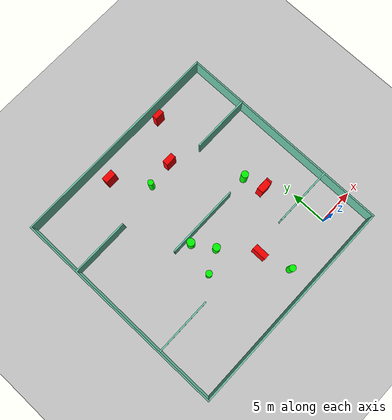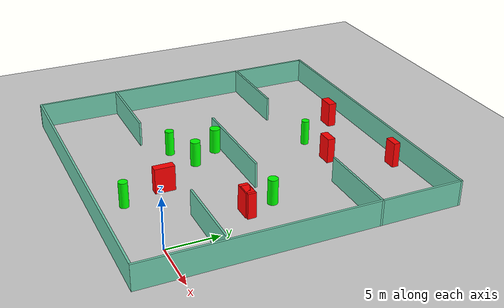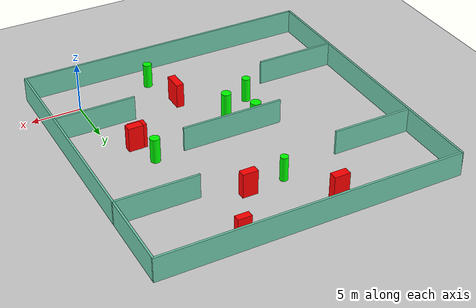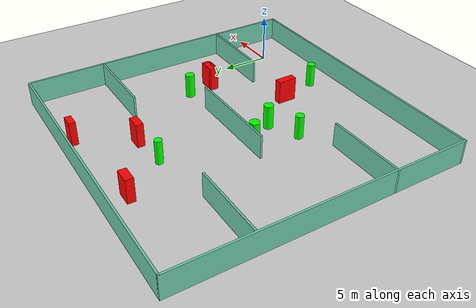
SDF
<sdf version="1.7">
 <world name="default">
  <light name="sun" type="directional">
   <pose>0 0 10 0 -0 0</pose>
   <diffuse>0.8 0.8 0.8 1</diffuse>
   <specular>0.2 0.2 0.2 1</specular>
   <attenuation>
    <range>1000</range>
    <constant>0.9</constant>
    <linear>0.01</linear>
    <quadratic>0.001</quadratic>
   </attenuation>
   <direction>-0.5 0.1 -0.9</direction>
   <spot><inner_angle>0</inner_angle><outer_angle>0</outer_angle><falloff>0</falloff></spot>
  </light>
  <model name="ground_plane">
   <static>1</static>
   <link name="link">
    <collision name="collision">
     <geometry><plane><normal>0 0 1</normal><size>100 100</size></plane></geometry>
     <surface>
      <contact><collide_bitmask>65535</collide_bitmask></contact>
      <friction><ode><mu>100</mu><mu2>50</mu2></ode></friction>
     </surface>
    </collision>
    <visual name="visual">
     <cast_shadows>0</cast_shadows>
     <geometry><plane><normal>0 0 1</normal><size>100 100</size></plane></geometry>
     <material>
      <script><uri>file://media/materials/scripts/gazebo.material</uri><name>Gazebo/Grey</name></script>
     </material>
    </visual>
   </link>
  </model>
  <gravity>0 0 -9.8</gravity>
  <magnetic_field>6e-06 2.3e-05 -4.2e-05</magnetic_field>
  <atmosphere type="adiabatic"/>
  <physics type="ode">
   <max_step_size>0.001</max_step_size>
   <real_time_factor>1</real_time_factor>
   <real_time_update_rate>1000</real_time_update_rate>
  </physics>
  <scene><ambient>0.4 0.4 0.4 1</ambient><background>0.7 0.7 0.7 1</background><shadows>1</shadows></scene>
  <spherical_coordinates>
   <surface_model>EARTH_WGS84</surface_model>
   <latitude_deg>0</latitude_deg>
   <longitude_deg>0</longitude_deg>
   <elevation>0</elevation>
   <heading_deg>0</heading_deg>
  </spherical_coordinates>
  <model name="my_base_walls">
   <link name="Wall_10">
    <collision name="Wall_10_Collision">
     <geometry><box><size>8.2 0.2 2.5</size></box></geometry>
     <pose>0 0 1.25 0 -0 0</pose>
    </collision>
    <visual name="Wall_10_Visual">
     <pose>0 0 1.25 0 -0 0</pose>
     <geometry><box><size>8.2 0.2 2.5</size></box></geometry>
     <material>
      <script><uri>file://media/materials/scripts/gazebo.material</uri><name>Gazebo/Grey</name></script>
      <ambient>0.435294 0.796078 0.67451 1</ambient>
     </material>
     <meta><layer>0</layer></meta>
    </visual>
    <pose>-11 -7 0 0 -0 0</pose>
   </link>
   <link name="Wall_12">
    <collision name="Wall_12_Collision">
     <geometry><box><size>8.2 0.2 2.5</size></box></geometry>
     <pose>0 0 1.25 0 -0 0</pose>
    </collision>
    <visual name="Wall_12_Visual">
     <pose>0 0 1.25 0 -0 0</pose>
     <geometry><box><size>8.2 0.2 2.5</size></box></geometry>
     <material>
      <script><uri>file://media/materials/scripts/gazebo.material</uri><name>Gazebo/Grey</name></script>
      <ambient>0.435294 0.796078 0.67451 1</ambient>
     </material>
     <meta><layer>0</layer></meta>
    </visual>
    <pose>-11 7 0 0 -0 0</pose>
   </link>
   <link name="Wall_14">
    <collision name="Wall_14_Collision">
     <geometry><box><size>8.2 0.2 2.5</size></box></geometry>
     <pose>0 0 1.25 0 -0 0</pose>
    </collision>
    <visual name="Wall_14_Visual">
     <pose>0 0 1.25 0 -0 0</pose>
     <geometry><box><size>8.2 0.2 2.5</size></box></geometry>
     <material>
      <script><uri>file://media/materials/scripts/gazebo.material</uri><name>Gazebo/Grey</name></script>
      <ambient>0.435294 0.796078 0.67451 1</ambient>
     </material>
     <meta><layer>0</layer></meta>
    </visual>
    <pose>11 7 0 0 -0 3.14159</pose>
   </link>
   <link name="Wall_16">
    <collision name="Wall_16_Collision">
     <geometry><box><size>10.2 0.2 2.5</size></box></geometry>
     <pose>0 0 1.25 0 -0 0</pose>
    </collision>
    <visual name="Wall_16_Visual">
     <pose>0 0 1.25 0 -0 0</pose>
     <geometry><box><size>10.2 0.2 2.5</size></box></geometry>
     <material>
      <script><uri>file://media/materials/scripts/gazebo.material</uri><name>Gazebo/Grey</name></script>
      <ambient>0.435294 0.796078 0.67451 1</ambient>
     </material>
     <meta><layer>0</layer></meta>
    </visual>
    <pose>0 0 0 0 -0 3.14159</pose>
   </link>
   <link name="Wall_2">
    <collision name="Wall_2_Collision">
     <geometry><box><size>30.2 0.2 2.5</size></box></geometry>
     <pose>0 0 1.25 0 -0 0</pose>
    </collision>
    <visual name="Wall_2_Visual">
     <pose>0 0 1.25 0 -0 0</pose>
     <geometry><box><size>30.2 0.2 2.5</size></box></geometry>
     <material>
      <script><uri>file://media/materials/scripts/gazebo.material</uri><name>Gazebo/Grey</name></script>
      <ambient>0.435294 0.796078 0.67451 1</ambient>
     </material>
     <meta><layer>0</layer></meta>
    </visual>
    <pose>0 -15 0 0 -0 3.14159</pose>
   </link>
   <link name="Wall_3">
    <collision name="Wall_3_Collision">
     <geometry><box><size>30.2 0.2 2.5</size></box></geometry>
     <pose>0 0 1.25 0 -0 0</pose>
    </collision>
    <visual name="Wall_3_Visual">
     <pose>0 0 1.25 0 -0 0</pose>
     <geometry><box><size>30.2 0.2 2.5</size></box></geometry>
     <material>
      <script><uri>file://media/materials/scripts/gazebo.material</uri><name>Gazebo/Grey</name></script>
      <ambient>0.435294 0.796078 0.67451 1</ambient>
     </material>
     <meta><layer>0</layer></meta>
    </visual>
    <pose>-15 0 0 0 -0 1.5708</pose>
   </link>
   <link name="Wall_4">
    <collision name="Wall_4_Collision">
     <geometry><box><size>30.2 0.2 2.5</size></box></geometry>
     <pose>0 0 1.25 0 -0 0</pose>
    </collision>
    <visual name="Wall_4_Visual">
     <pose>0 0 1.25 0 -0 0</pose>
     <geometry><box><size>30.2 0.2 2.5</size></box></geometry>
     <material>
      <script><uri>file://media/materials/scripts/gazebo.material</uri><name>Gazebo/Grey</name></script>
      <ambient>0.435294 0.796078 0.67451 1</ambient>
     </material>
     <meta><layer>0</layer></meta>
    </visual>
    <pose>0 15 0 0 -0 0</pose>
   </link>
   <link name="Wall_6">
    <collision name="Wall_6_Collision">
     <geometry><box><size>30.2 0.2 2.5</size></box></geometry>
     <pose>0 0 1.25 0 -0 0</pose>
    </collision>
    <visual name="Wall_6_Visual">
     <pose>0 0 1.25 0 -0 0</pose>
     <geometry><box><size>30.2 0.2 2.5</size></box></geometry>
     <material>
      <script><uri>file://media/materials/scripts/gazebo.material</uri><name>Gazebo/Grey</name></script>
      <ambient>0.435294 0.796078 0.67451 1</ambient>
     </material>
     <meta><layer>0</layer></meta>
    </visual>
    <pose>15 0 0 0 -0 1.5708</pose>
   </link>
   <link name="Wall_8">
    <collision name="Wall_8_Collision">
     <geometry><box><size>8.2 0.2 2.5</size></box></geometry>
     <pose>0 0 1.25 0 -0 0</pose>
    </collision>
    <visual name="Wall_8_Visual">
     <pose>0 0 1.25 0 -0 0</pose>
     <geometry><box><size>8.2 0.2 2.5</size></box></geometry>
     <material>
      <script><uri>file://media/materials/scripts/gazebo.material</uri><name>Gazebo/Grey</name></script>
      <ambient>0.435294 0.796078 0.67451 1</ambient>
     </material>
     <meta><layer>0</layer></meta>
    </visual>
    <pose>11 -7 0 0 -0 3.14159</pose>
   </link>
   <static>1</static>
   <pose>-11 11 0 0 -0 0</pose>
  </model>
  <model name="cylinder1">
   <static>1</static>
   <link name="link">
    <inertial>
     <mass>1</mass>
     <inertia><ixx>0.5</ixx><ixy>0</ixy><ixz>0</ixz><iyy>0.5</iyy><iyz>0</iyz><izz>1</izz></inertia>
    </inertial>
    <collision name="collision">
     <geometry><cylinder><radius>0.38522477857559567</radius><length>2.5</length></cylinder></geometry>
    </collision>
    <visual name="visual">
     <geometry><cylinder><radius>0.38522477857559567</radius><length>2.5</length></cylinder></geometry>
     <material>
      <ambient>0 1 0 1</ambient>
      <diffuse>0 1 0 1</diffuse>
      <specular>0.1 0.1 0.1 1</specular>
      <emissive>0 0 0 0</emissive>
     </material>
    </visual>
   </link>
   <pose>-11.803544489110353 19.16878986373348 1.25 0 0 0</pose>
  </model>
  <model name="cylinder2">
   <static>1</static>
   <link name="link">
    <inertial>
     <mass>1</mass>
     <inertia><ixx>0.5</ixx><ixy>0</ixy><ixz>0</ixz><iyy>0.5</iyy><iyz>0</iyz><izz>1</izz></inertia>
    </inertial>
    <collision name="collision">
     <geometry><cylinder><radius>0.49432258969517384</radius><length>2.5</length></cylinder></geometry>
    </collision>
    <visual name="visual">
     <geometry><cylinder><radius>0.49432258969517384</radius><length>2.5</length></cylinder></geometry>
     <material>
      <ambient>0 1 0 1</ambient>
      <diffuse>0 1 0 1</diffuse>
      <specular>0.1 0.1 0.1 1</specular>
      <emissive>0 0 0 0</emissive>
     </material>
    </visual>
   </link>
   <pose>-12.14301206417559 7.550427461956982 1.25 0 0 0</pose>
  </model>
  <model name="cylinder3">
   <static>1</static>
   <link name="link">
    <inertial>
     <mass>1</mass>
     <inertia><ixx>0.5</ixx><ixy>0</ixy><ixz>0</ixz><iyy>0.5</iyy><iyz>0</iyz><izz>1</izz></inertia>
    </inertial>
    <collision name="collision">
     <geometry><cylinder><radius>0.4781847995927383</radius><length>2.5</length></cylinder></geometry>
    </collision>
    <visual name="visual">
     <geometry><cylinder><radius>0.4781847995927383</radius><length>2.5</length></cylinder></geometry>
     <material>
      <ambient>0 1 0 1</ambient>
      <diffuse>0 1 0 1</diffuse>
      <specular>0.1 0.1 0.1 1</specular>
      <emissive>0 0 0 0</emissive>
     </material>
    </visual>
   </link>
   <pose>-2.926135005960951 11.216914404594391 1.25 0 0 0</pose>
  </model>
  <model name="cylinder4">
   <static>1</static>
   <link name="link">
    <inertial>
     <mass>1</mass>
     <inertia><ixx>0.5</ixx><ixy>0</ixy><ixz>0</ixz><iyy>0.5</iyy><iyz>0</iyz><izz>1</izz></inertia>
    </inertial>
    <collision name="collision">
     <geometry><cylinder><radius>0.42588016366436554</radius><length>2.5</length></cylinder></geometry>
    </collision>
    <visual name="visual">
     <geometry><cylinder><radius>0.42588016366436554</radius><length>2.5</length></cylinder></geometry>
     <material>
      <ambient>0 1 0 1</ambient>
      <diffuse>0 1 0 1</diffuse>
      <specular>0.1 0.1 0.1 1</specular>
      <emissive>0 0 0 0</emissive>
     </material>
    </visual>
   </link>
   <pose>-15.130044271382511 6.040353439102002 1.25 0 0 0</pose>
  </model>
  <model name="cylinder5">
   <static>1</static>
   <link name="link">
    <inertial>
     <mass>1</mass>
     <inertia><ixx>0.5</ixx><ixy>0</ixy><ixz>0</ixz><iyy>0.5</iyy><iyz>0</iyz><izz>1</izz></inertia>
    </inertial>
    <collision name="collision">
     <geometry><cylinder><radius>0.522194611479972</radius><length>2.5</length></cylinder></geometry>
    </collision>
    <visual name="visual">
     <geometry><cylinder><radius>0.522194611479972</radius><length>2.5</length></cylinder></geometry>
     <material>
      <ambient>0 1 0 1</ambient>
      <diffuse>0 1 0 1</diffuse>
      <specular>0.1 0.1 0.1 1</specular>
      <emissive>0 0 0 0</emissive>
     </material>
    </visual>
   </link>
   <pose>-13.855717908472036 10.285085933788295 1.25 0 0 0</pose>
  </model>
  <model name="cylinder6">
   <static>1</static>
   <link name="link">
    <inertial>
     <mass>1</mass>
     <inertia><ixx>0.5</ixx><ixy>0</ixy><ixz>0</ixz><iyy>0.5</iyy><iyz>0</iyz><izz>1</izz></inertia>
    </inertial>
    <collision name="collision">
     <geometry><cylinder><radius>0.43472369464795435</radius><length>2.5</length></cylinder></geometry>
    </collision>
    <visual name="visual">
     <geometry><cylinder><radius>0.43472369464795435</radius><length>2.5</length></cylinder></geometry>
     <material>
      <ambient>0 1 0 1</ambient>
      <diffuse>0 1 0 1</diffuse>
      <specular>0.1 0.1 0.1 1</specular>
      <emissive>0 0 0 0</emissive>
     </material>
    </visual>
   </link>
   <pose>-7.682337074993008 -0.9551497494743666 1.25 0 0 0</pose>
  </model>
  <model name="box1">
   <static>1</static>
   <link name="link">
    <inertial>
     <mass>1</mass>
     <inertia><ixx>0.083</ixx><ixy>0</ixy><ixz>0</ixz><iyy>0.083</iyy><iyz>0</iyz><izz>0.083</izz></inertia>
    </inertial>
    <collision name="collision">
     <geometry><box><size>0.7704830976569875 1.9601853544618408 2.5</size></box></geometry>
    </collision>
    <visual name="visual">
     <geometry><box><size>0.7704830976569875 1.9601853544618408 2.5</size></box></geometry>
     <material>
      <ambient>1 0 0 1</ambient>
      <diffuse>1 0 0 1</diffuse>
      <specular>0.1 0.1 0.1 1</specular>
      <emissive>0 0 0 0</emissive>
     </material>
    </visual>
    <sensor name="my_contact" type="contact">
     <contact><collision>box_collision</collision><topic>__default_topic__</topic></contact>
    </sensor>
   </link>
   <pose>-8.858202018279334 3.196794485827681 1.25 0 0 0</pose>
  </model>
  <model name="box2">
   <static>1</static>
   <link name="link">
    <inertial>
     <mass>1</mass>
     <inertia><ixx>0.083</ixx><ixy>0</ixy><ixz>0</ixz><iyy>0.083</iyy><iyz>0</iyz><izz>0.083</izz></inertia>
    </inertial>
    <collision name="collision">
     <geometry><box><size>1.619295469411653 0.8844051150652641 2.5</size></box></geometry>
    </collision>
    <visual name="visual">
     <geometry><box><size>1.619295469411653 0.8844051150652641 2.5</size></box></geometry>
     <material>
      <ambient>1 0 0 1</ambient>
      <diffuse>1 0 0 1</diffuse>
      <specular>0.1 0.1 0.1 1</specular>
      <emissive>0 0 0 0</emissive>
     </material>
    </visual>
    <sensor name="my_contact" type="contact">
     <contact><collision>box_collision</collision><topic>__default_topic__</topic></contact>
    </sensor>
   </link>
   <pose>-2.4000795080590542 8.420693882263715 1.25 0 0 0</pose>
  </model>
  <model name="box3">
   <static>1</static>
   <link name="link">
    <inertial>
     <mass>1</mass>
     <inertia><ixx>0.083</ixx><ixy>0</ixy><ixz>0</ixz><iyy>0.083</iyy><iyz>0</iyz><izz>0.083</izz></inertia>
    </inertial>
    <collision name="collision">
     <geometry><box><size>1.5821993641596872 0.8024762537757127 2.5</size></box></geometry>
    </collision>
    <visual name="visual">
     <geometry><box><size>1.5821993641596872 0.8024762537757127 2.5</size></box></geometry>
     <material>
      <ambient>1 0 0 1</ambient>
      <diffuse>1 0 0 1</diffuse>
      <specular>0.1 0.1 0.1 1</specular>
      <emissive>0 0 0 0</emissive>
     </material>
    </visual>
    <sensor name="my_contact" type="contact">
     <contact><collision>box_collision</collision><topic>__default_topic__</topic></contact>
    </sensor>
   </link>
   <pose>-14.817567571999447 23.55408233431903 1.25 0 0 0</pose>
  </model>
  <model name="box4">
   <static>1</static>
   <link name="link">
    <inertial>
     <mass>1</mass>
     <inertia><ixx>0.083</ixx><ixy>0</ixy><ixz>0</ixz><iyy>0.083</iyy><iyz>0</iyz><izz>0.083</izz></inertia>
    </inertial>
    <collision name="collision">
     <geometry><box><size>1.5218261380857443 0.7468700398910385 2.5</size></box></geometry>
    </collision>
    <visual name="visual">
     <geometry><box><size>1.5218261380857443 0.7468700398910385 2.5</size></box></geometry>
     <material>
      <ambient>1 0 0 1</ambient>
      <diffuse>1 0 0 1</diffuse>
      <specular>0.1 0.1 0.1 1</specular>
      <emissive>0 0 0 0</emissive>
     </material>
    </visual>
    <sensor name="my_contact" type="contact">
     <contact><collision>box_collision</collision><topic>__default_topic__</topic></contact>
    </sensor>
   </link>
   <pose>-8.014269890453685 19.555313526121072 1.25 0 0 0</pose>
  </model>
  <model name="box5">
   <static>1</static>
   <link name="link">
    <inertial>
     <mass>1</mass>
     <inertia><ixx>0.083</ixx><ixy>0</ixy><ixz>0</ixz><iyy>0.083</iyy><iyz>0</iyz><izz>0.083</izz></inertia>
    </inertial>
    <collision name="collision">
     <geometry><box><size>1.5126506701169071 0.8096521165665035 2.5</size></box></geometry>
    </collision>
    <visual name="visual">
     <geometry><box><size>1.5126506701169071 0.8096521165665035 2.5</size></box></geometry>
     <material>
      <ambient>1 0 0 1</ambient>
      <diffuse>1 0 0 1</diffuse>
      <specular>0.1 0.1 0.1 1</specular>
      <emissive>0 0 0 0</emissive>
     </material>
    </visual>
    <sensor name="my_contact" type="contact">
     <contact><collision>box_collision</collision><topic>__default_topic__</topic></contact>
    </sensor>
   </link>
   <pose>-2.1023331918707306 8.485467400959806 1.25 0 0 0</pose>
  </model>
  <model name="box6">
   <static>1</static>
   <link name="link">
    <inertial>
     <mass>1</mass>
     <inertia><ixx>0.083</ixx><ixy>0</ixy><ixz>0</ixz><iyy>0.083</iyy><iyz>0</iyz><izz>0.083</izz></inertia>
    </inertial>
    <collision name="collision">
     <geometry><box><size>1.3386585119810717 0.649649083482295 2.5</size></box></geometry>
    </collision>
    <visual name="visual">
     <geometry><box><size>1.3386585119810717 0.649649083482295 2.5</size></box></geometry>
     <material>
      <ambient>1 0 0 1</ambient>
      <diffuse>1 0 0 1</diffuse>
      <specular>0.1 0.1 0.1 1</specular>
      <emissive>0 0 0 0</emissive>
     </material>
    </visual>
    <sensor name="my_contact" type="contact">
     <contact><collision>box_collision</collision><topic>__default_topic__</topic></contact>
    </sensor>
   </link>
   <pose>-4.656093079805968 24.75828758838735 1.25 0 0 0</pose>
  </model>
 </world>
</sdf>
